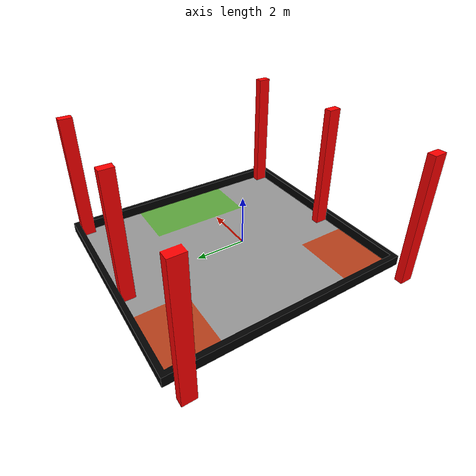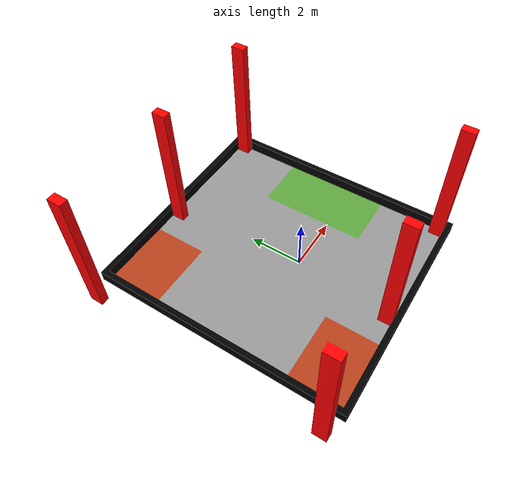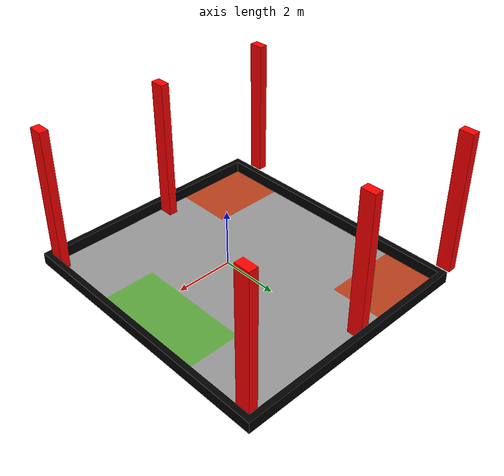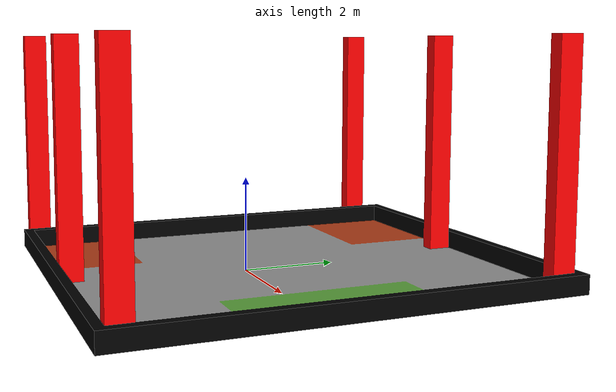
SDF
<?xml version="1.0" ?>
<sdf version='1.7'>
  <model name='test_field'>
    <pose>0 0 0 0 0 0</pose>
      <link name='field'>
        <collision name="collision">
          <geometry>
            <mesh>
              <uri>meshes/test_field.dae</uri>
            </mesh>
          </geometry>
        </collision>
        <visual name="visual">
          <geometry>
            <mesh>
              <uri>meshes/test_field.dae</uri>
            </mesh>
          </geometry>
        </visual>
      </link>
  </model>
</sdf>
